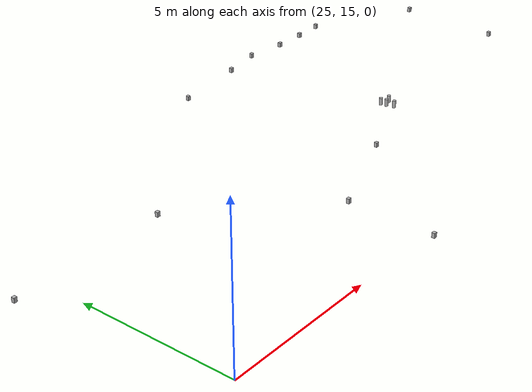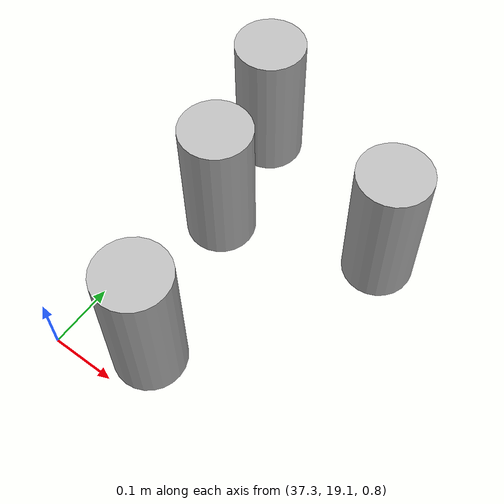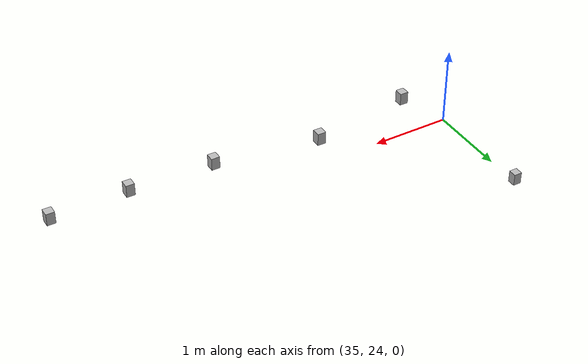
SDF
<sdf version="1.6">
 <world name="world">
  <model name="ground_plane">
   <static>1</static>
   <link name="link">
    <collision name="collision">
     <geometry><plane><normal>0 0 1</normal><size>100 100</size></plane></geometry>
     <surface><friction><ode><mu>100</mu><mu2>50</mu2></ode></friction></surface>
    </collision>
    <velocity_decay><linear>0</linear><angular>0</angular></velocity_decay>
   </link>
  </model>
  <physics name="default_physics" default="0" type="ode">
   <max_step_size>0.001</max_step_size>
   <real_time_factor>1</real_time_factor>
   <real_time_update_rate>1000</real_time_update_rate>
  </physics>
  <scene><ambient>0.4 0.4 0.4 1</ambient><background>0.7 0.7 0.7 1</background><shadows>1</shadows></scene>
  <gravity>0 0 -9.8</gravity>
  <magnetic_field>6e-06 2.3e-05 -4.2e-05</magnetic_field>
  <atmosphere type="adiabatic"/>
  <spherical_coordinates>
   <surface_model>EARTH_WGS84</surface_model>
   <latitude_deg>0</latitude_deg>
   <longitude_deg>0</longitude_deg>
   <elevation>0</elevation>
   <heading_deg>0</heading_deg>
  </spherical_coordinates>
  <light name="user_point_light_0" type="point">
   <pose>37.122 19.3882 1 0 -0 0</pose>
   <diffuse>0.5 0.5 0.5 1</diffuse>
   <specular>0.1 0.1 0.1 1</specular>
   <attenuation>
    <range>20</range>
    <constant>0.5</constant>
    <linear>0.01</linear>
    <quadratic>0.001</quadratic>
   </attenuation>
   <cast_shadows>0</cast_shadows>
   <direction>0 0 -1</direction>
  </light>
  <model name="beer">
   <link name="link">
    <pose>0 0 0.115 0 -0 0</pose>
    <inertial>
     <mass>0.39</mass>
     <inertia><ixx>0.00058</ixx><ixy>0</ixy><ixz>0</ixz><iyy>0.00058</iyy><iyz>0</iyz><izz>0.00019</izz></inertia>
    </inertial>
    <collision name="collision">
     <geometry><cylinder><radius>0.055</radius><length>0.23</length></cylinder></geometry>
    </collision>
    <visual name="visual">
     <geometry><cylinder><radius>0.055</radius><length>0.23</length></cylinder></geometry>
     <material>
      <script>
       <uri>model://beer/materials/scripts</uri>
       <uri>model://beer/materials/textures</uri>
       <name>Beer/Diffuse</name>
      </script>
     </material>
    </visual>
   </link>
   <pose>37.4134 19.1691 0.775002 8e-06 2.9e-05 -8.2e-05</pose>
  </model>
  <model name="beer_clone">
   <link name="link">
    <pose>0 0 0.115 0 -0 0</pose>
    <inertial>
     <mass>0.39</mass>
     <inertia><ixx>0.00058</ixx><ixy>0</ixy><ixz>0</ixz><iyy>0.00058</iyy><iyz>0</iyz><izz>0.00019</izz></inertia>
    </inertial>
    <collision name="collision">
     <geometry><cylinder><radius>0.055</radius><length>0.23</length></cylinder></geometry>
    </collision>
    <visual name="visual">
     <geometry><cylinder><radius>0.055</radius><length>0.23</length></cylinder></geometry>
     <material>
      <script>
       <uri>model://beer/materials/scripts</uri>
       <uri>model://beer/materials/textures</uri>
       <name>Beer/Diffuse</name>
      </script>
     </material>
    </visual>
   </link>
   <pose>37.353 19.4142 0.775001 1e-06 -2.7e-05 0.001966</pose>
  </model>
  <model name="beer_clone_0">
   <link name="link">
    <pose>0 0 0.115 0 -0 0</pose>
    <inertial>
     <mass>0.39</mass>
     <inertia><ixx>0.00058</ixx><ixy>0</ixy><ixz>0</ixz><iyy>0.00058</iyy><iyz>0</iyz><izz>0.00019</izz></inertia>
    </inertial>
    <collision name="collision">
     <geometry><cylinder><radius>0.055</radius><length>0.23</length></cylinder></geometry>
    </collision>
    <visual name="visual">
     <geometry><cylinder><radius>0.055</radius><length>0.23</length></cylinder></geometry>
     <material>
      <script>
       <uri>model://beer/materials/scripts</uri>
       <uri>model://beer/materials/textures</uri>
       <name>Beer/Diffuse</name>
      </script>
     </material>
    </visual>
   </link>
   <pose>37.3169 19.5944 0.774991 6e-06 1e-05 0.005223</pose>
  </model>
  <model name="beer_clone_1">
   <link name="link">
    <pose>0 0 0.115 0 -0 0</pose>
    <inertial>
     <mass>0.39</mass>
     <inertia><ixx>0.00058</ixx><ixy>0</ixy><ixz>0</ixz><iyy>0.00058</iyy><iyz>0</iyz><izz>0.00019</izz></inertia>
    </inertial>
    <collision name="collision">
     <geometry><cylinder><radius>0.055</radius><length>0.23</length></cylinder></geometry>
    </collision>
    <visual name="visual">
     <geometry><cylinder><radius>0.055</radius><length>0.23</length></cylinder></geometry>
     <material>
      <script>
       <uri>model://beer/materials/scripts</uri>
       <uri>model://beer/materials/textures</uri>
       <name>Beer/Diffuse</name>
      </script>
     </material>
    </visual>
   </link>
   <pose>37.5955 19.4945 0.77499 -1e-06 -3e-06 0.008761</pose>
  </model>
  <model name="tea_box_0">
   <link name="link">
    <pose>0 0 0.075 0 -0 0</pose>
    <inertial>
     <mass>0.39</mass>
     <inertia>
      <ixx>0.000264062</ixx>
      <ixy>0</ixy>
      <ixz>0</ixz>
      <iyy>0.000264062</iyy>
      <iyz>0</iyz>
      <izz>0.0001625</izz>
     </inertia>
    </inertial>
    <visual name="visual">
     <geometry><box><size>0.1 0.1 0.15</size></box></geometry>
     <material>
      <script>
       <uri>model://tea_box/materials/scripts</uri>
       <uri>model://tea_box/materials/textures</uri>
       <name>tea_pat</name>
      </script>
     </material>
    </visual>
    <collision name="collision"><geometry><box><size>0.1 0.1 0.15</size></box></geometry></collision>
   </link>
   <pose>36.2227 18.9519 0 5e-06 -1.6e-05 -1.1e-05</pose>
  </model>
  <model name="tea_box_0_clone_clone_0">
   <link name="link">
    <pose>0 0 0.075 0 -0 0</pose>
    <inertial>
     <mass>0.39</mass>
     <inertia>
      <ixx>0.000264062</ixx>
      <ixy>0</ixy>
      <ixz>0</ixz>
      <iyy>0.000264062</iyy>
      <iyz>0</iyz>
      <izz>0.0001625</izz>
     </inertia>
    </inertial>
    <visual name="visual">
     <geometry><box><size>0.1 0.1 0.15</size></box></geometry>
     <material>
      <script>
       <uri>model://tea_box/materials/scripts</uri>
       <uri>model://tea_box/materials/textures</uri>
       <name>tea_pat</name>
      </script>
     </material>
    </visual>
    <collision name="collision"><geometry><box><size>0.1 0.1 0.15</size></box></geometry></collision>
   </link>
   <pose>28.1753 20.3531 0.890218 3e-06 -1.1e-05 -0.003523</pose>
  </model>
  <model name="tea_box_0_clone_clone_0_clone">
   <link name="link">
    <pose>0 0 0.075 0 -0 0</pose>
    <inertial>
     <mass>0.39</mass>
     <inertia>
      <ixx>0.000264062</ixx>
      <ixy>0</ixy>
      <ixz>0</ixz>
      <iyy>0.000264062</iyy>
      <iyz>0</iyz>
      <izz>0.0001625</izz>
     </inertia>
    </inertial>
    <visual name="visual">
     <geometry><box><size>0.1 0.1 0.15</size></box></geometry>
     <material>
      <script>
       <uri>model://tea_box/materials/scripts</uri>
       <uri>model://tea_box/materials/textures</uri>
       <name>tea_pat</name>
      </script>
     </material>
    </visual>
    <collision name="collision"><geometry><box><size>0.1 0.1 0.15</size></box></geometry></collision>
   </link>
   <pose>23.155 20.3624 0.890217 1.1e-05 -1.6e-05 -0.000745</pose>
  </model>
  <model name="tea_box_1">
   <link name="link">
    <pose>0 0 0.075 0 -0 0</pose>
    <inertial>
     <mass>0.39</mass>
     <inertia>
      <ixx>0.000264062</ixx>
      <ixy>0</ixy>
      <ixz>0</ixz>
      <iyy>0.000264062</iyy>
      <iyz>0</iyz>
      <izz>0.0001625</izz>
     </inertia>
    </inertial>
    <visual name="visual">
     <geometry><box><size>0.1 0.1 0.15</size></box></geometry>
     <material>
      <script>
       <uri>model://tea_box/materials/scripts</uri>
       <uri>model://tea_box/materials/textures</uri>
       <name>tea_pat</name>
      </script>
     </material>
    </visual>
    <collision name="collision"><geometry><box><size>0.1 0.1 0.15</size></box></geometry></collision>
   </link>
   <pose>31.8584 14.0561 0.884765 -0.014692 -1.1e-05 0.000276</pose>
  </model>
  <model name="tea_box_1_clone">
   <link name="link">
    <pose>0 0 0.075 0 -0 0</pose>
    <inertial>
     <mass>0.39</mass>
     <inertia>
      <ixx>0.000264062</ixx>
      <ixy>0</ixy>
      <ixz>0</ixz>
      <iyy>0.000264062</iyy>
      <iyz>0</iyz>
      <izz>0.0001625</izz>
     </inertia>
    </inertial>
    <visual name="visual">
     <geometry><box><size>0.1 0.1 0.15</size></box></geometry>
     <material>
      <script>
       <uri>model://tea_box/materials/scripts</uri>
       <uri>model://tea_box/materials/textures</uri>
       <name>tea_pat</name>
      </script>
     </material>
    </visual>
    <collision name="collision"><geometry><box><size>0.1 0.1 0.15</size></box></geometry></collision>
   </link>
   <pose>31.8687 16.8043 0.884733 -0.014734 -1.2e-05 -0.00068</pose>
  </model>
  <model name="tea_box_1_clone_0">
   <link name="link">
    <pose>0 0 0.075 0 -0 0</pose>
    <inertial>
     <mass>0.39</mass>
     <inertia>
      <ixx>0.000264062</ixx>
      <ixy>0</ixy>
      <ixz>0</ixz>
      <iyy>0.000264062</iyy>
      <iyz>0</iyz>
      <izz>0.0001625</izz>
     </inertia>
    </inertial>
    <visual name="visual">
     <geometry><box><size>0.1 0.1 0.15</size></box></geometry>
     <material>
      <script>
       <uri>model://tea_box/materials/scripts</uri>
       <uri>model://tea_box/materials/textures</uri>
       <name>tea_pat</name>
      </script>
     </material>
    </visual>
    <collision name="collision"><geometry><box><size>0.1 0.1 0.15</size></box></geometry></collision>
   </link>
   <pose>37.2268 24.6506 0.909 6e-06 1e-06 6e-06</pose>
  </model>
  <model name="tea_box_1_clone_1">
   <link name="link">
    <pose>0 0 0.075 0 -0 0</pose>
    <inertial>
     <mass>0.39</mass>
     <inertia>
      <ixx>0.000264062</ixx>
      <ixy>0</ixy>
      <ixz>0</ixz>
      <iyy>0.000264062</iyy>
      <iyz>0</iyz>
      <izz>0.0001625</izz>
     </inertia>
    </inertial>
    <visual name="visual">
     <geometry><box><size>0.1 0.1 0.15</size></box></geometry>
     <material>
      <script>
       <uri>model://tea_box/materials/scripts</uri>
       <uri>model://tea_box/materials/textures</uri>
       <name>tea_pat</name>
      </script>
     </material>
    </visual>
    <collision name="collision"><geometry><box><size>0.1 0.1 0.15</size></box></geometry></collision>
   </link>
   <pose>35 25.4489 -3e-06 5.6e-05 2e-06 -2e-06</pose>
  </model>
  <model name="tea_box_1_clone_0_clone">
   <link name="link">
    <pose>0 0 0.075 0 -0 0</pose>
    <inertial>
     <mass>0.39</mass>
     <inertia>
      <ixx>0.000264062</ixx>
      <ixy>0</ixy>
      <ixz>0</ixz>
      <iyy>0.000264062</iyy>
      <iyz>0</iyz>
      <izz>0.0001625</izz>
     </inertia>
    </inertial>
    <visual name="visual">
     <geometry><box><size>0.1 0.1 0.15</size></box></geometry>
     <material>
      <script>
       <uri>model://tea_box/materials/scripts</uri>
       <uri>model://tea_box/materials/textures</uri>
       <name>tea_pat</name>
      </script>
     </material>
    </visual>
    <collision name="collision"><geometry><box><size>0.1 0.1 0.15</size></box></geometry></collision>
   </link>
   <pose>36.0009 24.4606 0.909 4e-06 -9e-06 -1.4e-05</pose>
  </model>
  <model name="tea_box_1_clone_0_clone_0">
   <link name="link">
    <pose>0 0 0.075 0 -0 0</pose>
    <inertial>
     <mass>0.39</mass>
     <inertia>
      <ixx>0.000264062</ixx>
      <ixy>0</ixy>
      <ixz>0</ixz>
      <iyy>0.000264062</iyy>
      <iyz>0</iyz>
      <izz>0.0001625</izz>
     </inertia>
    </inertial>
    <visual name="visual">
     <geometry><box><size>0.1 0.1 0.15</size></box></geometry>
     <material>
      <script>
       <uri>model://tea_box/materials/scripts</uri>
       <uri>model://tea_box/materials/textures</uri>
       <name>tea_pat</name>
      </script>
     </material>
    </visual>
    <collision name="collision"><geometry><box><size>0.1 0.1 0.15</size></box></geometry></collision>
   </link>
   <pose>38.4516 24.4582 0.909 4e-06 -9e-06 -1.4e-05</pose>
  </model>
  <model name="tea_box_1_clone_0_clone_1">
   <link name="link">
    <pose>0 0 0.075 0 -0 0</pose>
    <inertial>
     <mass>0.39</mass>
     <inertia>
      <ixx>0.000264062</ixx>
      <ixy>0</ixy>
      <ixz>0</ixz>
      <iyy>0.000264062</iyy>
      <iyz>0</iyz>
      <izz>0.0001625</izz>
     </inertia>
    </inertial>
    <visual name="visual">
     <geometry><box><size>0.1 0.1 0.15</size></box></geometry>
     <material>
      <script>
       <uri>model://tea_box/materials/scripts</uri>
       <uri>model://tea_box/materials/textures</uri>
       <name>tea_pat</name>
      </script>
     </material>
    </visual>
    <collision name="collision"><geometry><box><size>0.1 0.1 0.15</size></box></geometry></collision>
   </link>
   <pose>39.4439 24.4207 0.909 4e-06 -9e-06 -1.4e-05</pose>
  </model>
  <model name="tea_box_1_clone_0_clone_2">
   <link name="link">
    <pose>0 0 0.075 0 -0 0</pose>
    <inertial>
     <mass>0.39</mass>
     <inertia>
      <ixx>0.000264062</ixx>
      <ixy>0</ixy>
      <ixz>0</ixz>
      <iyy>0.000264062</iyy>
      <iyz>0</iyz>
      <izz>0.0001625</izz>
     </inertia>
    </inertial>
    <visual name="visual">
     <geometry><box><size>0.1 0.1 0.15</size></box></geometry>
     <material>
      <script>
       <uri>model://tea_box/materials/scripts</uri>
       <uri>model://tea_box/materials/textures</uri>
       <name>tea_pat</name>
      </script>
     </material>
    </visual>
    <collision name="collision"><geometry><box><size>0.1 0.1 0.15</size></box></geometry></collision>
   </link>
   <pose>40.3473 24.4329 0.909 3.4e-05 -4e-06 8e-06</pose>
  </model>
  <model name="tea_box_1_clone_0_clone_2_clone">
   <link name="link">
    <pose>0 0 0.075 0 -0 0</pose>
    <inertial>
     <mass>0.39</mass>
     <inertia>
      <ixx>0.000264062</ixx>
      <ixy>0</ixy>
      <ixz>0</ixz>
      <iyy>0.000264062</iyy>
      <iyz>0</iyz>
      <izz>0.0001625</izz>
     </inertia>
    </inertial>
    <visual name="visual">
     <geometry><box><size>0.1 0.1 0.15</size></box></geometry>
     <material>
      <script>
       <uri>model://tea_box/materials/scripts</uri>
       <uri>model://tea_box/materials/textures</uri>
       <name>tea_pat</name>
      </script>
     </material>
    </visual>
    <collision name="collision"><geometry><box><size>0.1 0.1 0.15</size></box></geometry></collision>
   </link>
   <pose>43.494 19.5521 0.886793 -1.2e-05 -1.7e-05 -0.000199</pose>
  </model>
  <model name="tea_box_1_clone_0_clone_2_clone_clone">
   <link name="link">
    <pose>0 0 0.075 0 -0 0</pose>
    <inertial>
     <mass>0.39</mass>
     <inertia>
      <ixx>0.000264062</ixx>
      <ixy>0</ixy>
      <ixz>0</ixz>
      <iyy>0.000264062</iyy>
      <iyz>0</iyz>
      <izz>0.0001625</izz>
     </inertia>
    </inertial>
    <visual name="visual">
     <geometry><box><size>0.1 0.1 0.15</size></box></geometry>
     <material>
      <script>
       <uri>model://tea_box/materials/scripts</uri>
       <uri>model://tea_box/materials/textures</uri>
       <name>tea_pat</name>
      </script>
     </material>
    </visual>
    <collision name="collision"><geometry><box><size>0.1 0.1 0.15</size></box></geometry></collision>
   </link>
   <pose>43.5333 22.777 0.886794 7e-06 -0 0.006398</pose>
  </model>
 </world>
</sdf>
